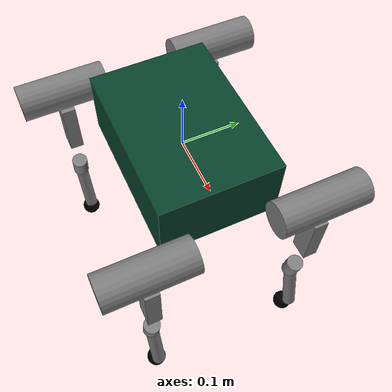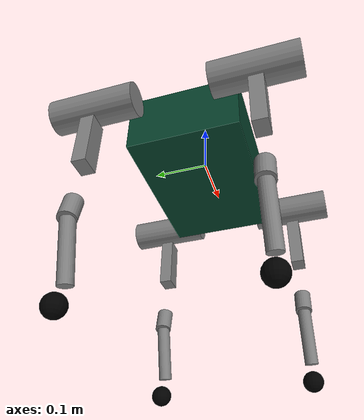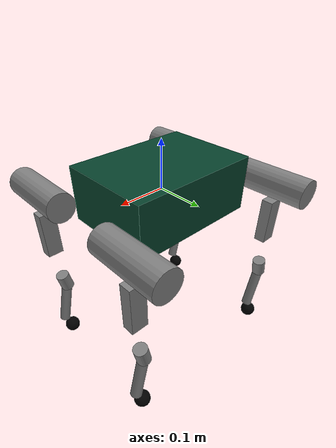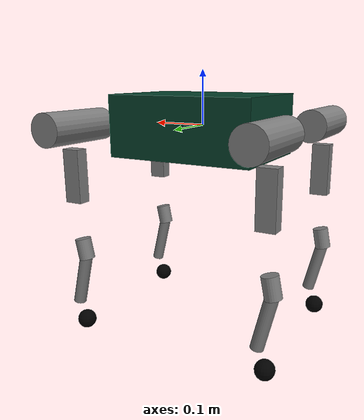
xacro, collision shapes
<?xml version="1.0" encoding="utf-8"?>
<robot name="m2_metal" xmlns:xacro="http://www.ros.org/wiki/xacro">

  <xacro:arg name="robot_controllers" default="$(find m2_sim)/config/ros_control/ros_control.yaml"/>
  <xacro:arg name="command_interface" default="effort"/>

  <!-- Materials -->
  <material name="svan_black">
    <color rgba="0.0 0.0 0.0 1.0"/>
  </material>
  <material name="svan_blue">
    <color rgba="0.156 0.55 0.96 1.0"/>
  </material>
  <material name="svan_green">
    <color rgba="0.024 0.251 0.169 1.0"/>
  </material>
  <material name="svan_grey">
    <color rgba="0.5 0.5 0.5 1.0"/>
  </material>

  <!-- Root base_link (REP-120 standard) -->
  <link name="base_link"/>
  <joint name="base_link_joint" type="fixed">
    <parent link="base_link"/>
    <child link="base"/>
    <origin xyz="0 0 0" rpy="0 0 0"/>
  </joint>

  <!-- Base link -->
  <link name="base">
    <inertial>
      <origin xyz="0.058346 -0.002972 0.001919" rpy="0 0 0"/>
      <mass value="5.18596663"/>
      <inertia ixx="0.02220107" ixy="-0.00019966" ixz="-0.00048929" iyy="0.05026338" iyz="-1.27e-05" izz="0.06413613"/>
    </inertial>
    <visual>
      <origin xyz="0 0 0" rpy="0 0 0"/>
      <geometry>
        <mesh filename="package://m2_description/meshes/torso.STL"/>
      </geometry>
      <material name="svan_green"/>
    </visual>
    <collision>
      <origin xyz="0 0 0" rpy="0 0 0"/>
      <geometry>
        <box size="0.28 0.20 0.114"/>
      </geometry>
    </collision>
  </link>

  <!-- IMU link -->
  <link name="imu_link"/>
  <joint name="base_to_imu" type="fixed">
    <parent link="base"/>
    <child link="imu_link"/>
    <origin xyz="0 0 0" rpy="0 0 0"/>
  </joint>

  <!-- ==================== FRONT LEFT (FL) LEG ==================== -->
  <joint name="FL_hip_joint" type="revolute">
    <parent link="base"/>
    <child link="FL_hip"/>
    <origin xyz="0.147 0.06 0.00025" rpy="0 0 0"/>
    <axis xyz="1 0 0"/>
    <limit lower="-4.8" upper="4.9" effort="12" velocity="30"/>
  </joint>
  <link name="FL_hip">
    <inertial>
      <origin xyz="0.00918208 -0.00133606 -0.00430117" rpy="0 0 0"/>
      <mass value="1.127"/>
      <inertia ixx="0.0026019" ixy="0.0001226" ixz="0" iyy="0.0009202" iyz="0" izz="0.0026365"/>
    </inertial>
    <visual>
      <origin xyz="0 0 0" rpy="0 0 0"/>
      <geometry>
        <mesh filename="package://m2_description/meshes/FL_hip.STL"/>
      </geometry>
      <material name="svan_grey"/>
    </visual>
    <collision>
      <origin xyz="0.04 0.08 0.0" rpy="1.57 0 0"/>
      <geometry>
        <cylinder length="0.15" radius="0.03"/>
      </geometry>
    </collision>
  </link>

  <joint name="FL_thigh_joint" type="revolute">
    <parent link="FL_hip"/>
    <child link="FL_thigh"/>
    <origin xyz="0.043751 0.0811 0.0" rpy="0 0 0"/>
    <axis xyz="0 1 0"/>
    <limit lower="-4.04" upper="4.188" effort="12" velocity="30"/>
  </joint>
  <link name="FL_thigh">
    <inertial>
      <origin xyz="0.0 0.00262472 -0.06933846" rpy="0 0 0"/>
      <mass value="0.15396568"/>
      <inertia ixx="0.00075104" ixy="0.0" ixz="0.0" iyy="0.00076" iyz="2.9e-05" izz="4.7e-05"/>
    </inertial>
    <visual>
      <origin xyz="0 0 0" rpy="0 0 0"/>
      <geometry>
        <mesh filename="package://m2_description/meshes/FL_thigh.STL"/>
      </geometry>
      <material name="svan_grey"/>
    </visual>
    <collision>
      <origin xyz="0.0 0.0 -0.09" rpy="0 0 0"/>
      <geometry>
        <box size="0.034 0.0245 0.10"/>
      </geometry>
    </collision>
  </link>

  <joint name="FL_calf_joint" type="revolute">
    <parent link="FL_thigh"/>
    <child link="FL_calf"/>
    <origin xyz="0.0 0.0 -0.1915" rpy="0 0 0"/>
    <axis xyz="0 1 0"/>
    <limit lower="-4.69" upper="4.91" effort="24" velocity="15"/>
  </joint>
  <link name="FL_calf">
    <inertial>
      <origin xyz="-0.00106 0.0 -0.12046" rpy="0 0 0"/>
      <mass value="0.124482"/>
      <inertia ixx="0.0005021" ixy="0.0" ixz="-1.27e-05" iyy="0.000517" iyz="0" izz="2.02e-05"/>
    </inertial>
    <visual>
      <origin xyz="0 0 0" rpy="0 0 0"/>
      <geometry>
        <mesh filename="package://m2_description/meshes/FL_calf.STL"/>
      </geometry>
      <material name="svan_grey"/>
    </visual>
    <collision>
      <origin xyz="-0.01 0.0 -0.04" rpy="0 0.2 0"/>
      <geometry>
        <cylinder length="0.04" radius="0.015"/>
      </geometry>
    </collision>
    <collision>
      <origin xyz="-0.0 0.0 -0.105" rpy="0 -0.24 0"/>
      <geometry>
        <cylinder length="0.1" radius="0.012"/>
      </geometry>
    </collision>
  </link>

  <joint name="FL_foot_joint" type="fixed" dont_collapse="true">
    <parent link="FL_calf"/>
    <child link="FL_foot"/>
    <origin xyz="-0.00351 0.0 -0.1901" rpy="0 0 0"/>
    <axis xyz="0 0 0"/>
    <limit lower="0" upper="0" effort="1000" velocity="0"/>
  </joint>
  <link name="FL_foot">
    <inertial>
      <origin xyz="-0.0025566 0.00017773 -0.00416818" rpy="0 0 0"/>
      <mass value="0.02330447"/>
      <inertia ixx="2.62e-06" ixy="0" ixz="3.7e-07" iyy="2.62e-06" iyz="0" izz="3e-06"/>
    </inertial>
    <visual>
      <origin xyz="0 0 0" rpy="0 0 0"/>
      <geometry>
        <mesh filename="package://m2_description/meshes/FL_foot.STL"/>
      </geometry>
      <material name="svan_black"/>
    </visual>
    <collision name="FL_foot_collision">
      <origin xyz="0.0 0.0 0.0" rpy="0 0 0"/>
      <geometry>
        <sphere radius="0.018"/>
      </geometry>
    </collision>
  </link>

  <link name="FL_foot_site"/>
  <joint name="FL_foot_site_joint" type="fixed" dont_collapse="true">
    <origin rpy="0 0 0" xyz="-0.0 0 -0.016"/>
    <parent link="FL_foot"/>
    <child link="FL_foot_site"/>
    <axis xyz="0 0 1"/>
    <limit effort="1000" lower="0" upper="0" velocity="0"/>
  </joint>

  <!-- ==================== FRONT RIGHT (FR) LEG ==================== -->
  <joint name="FR_hip_joint" type="revolute">
    <parent link="base"/>
    <child link="FR_hip"/>
    <origin xyz="0.147 -0.06 0.00025" rpy="0 0 0"/>
    <axis xyz="1 0 0"/>
    <limit lower="-4.8" upper="4.9" effort="12" velocity="30"/>
  </joint>
  <link name="FR_hip">
    <inertial>
      <origin xyz="0.00918208 -0.00133606 -0.00430117" rpy="0 0 0"/>
      <mass value="1.127"/>
      <inertia ixx="0.0026019" ixy="0.0001226" ixz="0" iyy="0.0009202" iyz="0" izz="0.0026365"/>
    </inertial>
    <visual>
      <origin xyz="0 0 0" rpy="0 0 0"/>
      <geometry>
        <mesh filename="package://m2_description/meshes/FR_hip.STL"/>
      </geometry>
      <material name="svan_grey"/>
    </visual>
    <collision>
      <origin xyz="0.04 -0.08 0.0" rpy="1.57 0 0"/>
      <geometry>
        <cylinder length="0.15" radius="0.03"/>
      </geometry>
    </collision>
  </link>

  <joint name="FR_thigh_joint" type="revolute">
    <parent link="FR_hip"/>
    <child link="FR_thigh"/>
    <origin xyz="0.043751 -0.0811 0.0" rpy="0 0 0"/>
    <axis xyz="0 1 0"/>
    <limit lower="-4.04" upper="4.188" effort="12" velocity="30"/>
  </joint>
  <link name="FR_thigh">
    <inertial>
      <origin xyz="0.0 0.00262472 -0.06933846" rpy="0 0 0"/>
      <mass value="0.15396568"/>
      <inertia ixx="0.00075104" ixy="0.0" ixz="0.0" iyy="0.00076" iyz="2.9e-05" izz="4.7e-05"/>
    </inertial>
    <visual>
      <origin xyz="0 0 0" rpy="0 0 0"/>
      <geometry>
        <mesh filename="package://m2_description/meshes/FR_thigh.STL"/>
      </geometry>
      <material name="svan_grey"/>
    </visual>
    <collision>
      <origin xyz="0.0 -0.0 -0.09" rpy="0 0 0"/>
      <geometry>
        <box size="0.034 0.0245 0.10"/>
      </geometry>
    </collision>
  </link>

  <joint name="FR_calf_joint" type="revolute">
    <parent link="FR_thigh"/>
    <child link="FR_calf"/>
    <origin xyz="0.0 -0.0 -0.1915" rpy="0 0 0"/>
    <axis xyz="0 1 0"/>
    <limit lower="-4.69" upper="4.91" effort="24" velocity="15"/>
  </joint>
  <link name="FR_calf">
    <inertial>
      <origin xyz="-0.00106 -0.0 -0.12046" rpy="0 0 0"/>
      <mass value="0.124482"/>
      <inertia ixx="0.0005021" ixy="0.0" ixz="-1.27e-05" iyy="0.000517" iyz="0" izz="2.02e-05"/>
    </inertial>
    <visual>
      <origin xyz="0 0 0" rpy="0 0 0"/>
      <geometry>
        <mesh filename="package://m2_description/meshes/FR_calf.STL"/>
      </geometry>
      <material name="svan_grey"/>
    </visual>
    <collision>
      <origin xyz="-0.01 -0.0 -0.04" rpy="0 0.2 0"/>
      <geometry>
        <cylinder length="0.04" radius="0.015"/>
      </geometry>
    </collision>
    <collision>
      <origin xyz="-0.0 -0.0 -0.105" rpy="0 -0.24 0"/>
      <geometry>
        <cylinder length="0.1" radius="0.012"/>
      </geometry>
    </collision>
  </link>

  <joint name="FR_foot_joint" type="fixed" dont_collapse="true">
    <parent link="FR_calf"/>
    <child link="FR_foot"/>
    <origin xyz="-0.00351 -0.0 -0.1901" rpy="0 0 0"/>
    <axis xyz="0 0 0"/>
    <limit lower="0" upper="0" effort="1000" velocity="0"/>
  </joint>
  <link name="FR_foot">
    <inertial>
      <origin xyz="-0.0025566 0.00017773 -0.00416818" rpy="0 0 0"/>
      <mass value="0.02330447"/>
      <inertia ixx="2.62e-06" ixy="0" ixz="3.7e-07" iyy="2.62e-06" iyz="0" izz="3e-06"/>
    </inertial>
    <visual>
      <origin xyz="0 0 0" rpy="0 0 0"/>
      <geometry>
        <mesh filename="package://m2_description/meshes/FR_foot.STL"/>
      </geometry>
      <material name="svan_black"/>
    </visual>
    <collision name="FR_foot_collision">
      <origin xyz="0.0 0.0 0.0" rpy="0 0 0"/>
      <geometry>
        <sphere radius="0.018"/>
      </geometry>
    </collision>
  </link>

  <link name="FR_foot_site"/>
  <joint name="FR_foot_site_joint" type="fixed" dont_collapse="true">
    <origin rpy="0 0 0" xyz="-0.0 0 -0.016"/>
    <parent link="FR_foot"/>
    <child link="FR_foot_site"/>
    <axis xyz="0 0 1"/>
    <limit effort="1000" lower="0" upper="0" velocity="0"/>
  </joint>

  <!-- ==================== REAR LEFT (RL) LEG ==================== -->
  <joint name="RL_hip_joint" type="revolute">
    <parent link="base"/>
    <child link="RL_hip"/>
    <origin xyz="-0.147 0.06 0.00025" rpy="0 0 0"/>
    <axis xyz="1 0 0"/>
    <limit lower="-4.8" upper="4.9" effort="12" velocity="30"/>
  </joint>
  <link name="RL_hip">
    <inertial>
      <origin xyz="0.00918208 -0.00133606 -0.00430117" rpy="0 0 0"/>
      <mass value="1.127"/>
      <inertia ixx="0.0026019" ixy="0.0001226" ixz="0" iyy="0.0009202" iyz="0" izz="0.0026365"/>
    </inertial>
    <visual>
      <origin xyz="0 0 0" rpy="0 0 0"/>
      <geometry>
        <mesh filename="package://m2_description/meshes/RL_hip.STL"/>
      </geometry>
      <material name="svan_grey"/>
    </visual>
    <collision>
      <origin xyz="-0.04 0.08 0.0" rpy="1.57 0 0"/>
      <geometry>
        <cylinder length="0.15" radius="0.03"/>
      </geometry>
    </collision>
  </link>

  <joint name="RL_thigh_joint" type="revolute">
    <parent link="RL_hip"/>
    <child link="RL_thigh"/>
    <origin xyz="-0.043751 0.0811 0.0" rpy="0 0 0"/>
    <axis xyz="0 1 0"/>
    <limit lower="-4.04" upper="4.188" effort="12" velocity="30"/>
  </joint>
  <link name="RL_thigh">
    <inertial>
      <origin xyz="0.0 0.00262472 -0.06933846" rpy="0 0 0"/>
      <mass value="0.15396568"/>
      <inertia ixx="0.00075104" ixy="0.0" ixz="0.0" iyy="0.00076" iyz="2.9e-05" izz="4.7e-05"/>
    </inertial>
    <visual>
      <origin xyz="0 0 0" rpy="0 0 0"/>
      <geometry>
        <mesh filename="package://m2_description/meshes/RL_thigh.STL"/>
      </geometry>
      <material name="svan_grey"/>
    </visual>
    <collision>
      <origin xyz="-0.0 0.0 -0.09" rpy="0 0 0"/>
      <geometry>
        <box size="0.034 0.0245 0.10"/>
      </geometry>
    </collision>
  </link>

  <joint name="RL_calf_joint" type="revolute">
    <parent link="RL_thigh"/>
    <child link="RL_calf"/>
    <origin xyz="-0.0 0.0 -0.1915" rpy="0 0 0"/>
    <axis xyz="0 1 0"/>
    <limit lower="-4.69" upper="4.91" effort="24" velocity="15"/>
  </joint>
  <link name="RL_calf">
    <inertial>
      <origin xyz="-0.00106 0.0 -0.1083" rpy="0 0 0"/>
      <mass value="0.124482"/>
      <inertia ixx="0.0005021" ixy="0.0" ixz="-1.27e-05" iyy="0.000517" iyz="0" izz="2.02e-05"/>
    </inertial>
    <visual>
      <origin xyz="0 0 0" rpy="0 0 0"/>
      <geometry>
        <mesh filename="package://m2_description/meshes/RL_calf.STL"/>
      </geometry>
      <material name="svan_grey"/>
    </visual>
    <collision>
      <origin xyz="-0.01 0.0 -0.04" rpy="0 0.2 0"/>
      <geometry>
        <cylinder length="0.04" radius="0.015"/>
      </geometry>
    </collision>
    <collision>
      <origin xyz="-0.0 0.0 -0.105" rpy="0 -0.24 0"/>
      <geometry>
        <cylinder length="0.1" radius="0.012"/>
      </geometry>
    </collision>
  </link>

  <joint name="RL_foot_joint" type="fixed" dont_collapse="true">
    <parent link="RL_calf"/>
    <child link="RL_foot"/>
    <origin xyz="-0.00351 0.0 -0.1901" rpy="0 0 0"/>
    <axis xyz="0 0 0"/>
    <limit lower="0" upper="0" effort="1000" velocity="0"/>
  </joint>
  <link name="RL_foot">
    <inertial>
      <origin xyz="-0.0025566 0.00017773 -0.00416818" rpy="0 0 0"/>
      <mass value="0.02330447"/>
      <inertia ixx="2.62e-06" ixy="0" ixz="3.7e-07" iyy="2.62e-06" iyz="0" izz="3e-06"/>
    </inertial>
    <visual>
      <origin xyz="0 0 0" rpy="0 0 0"/>
      <geometry>
        <mesh filename="package://m2_description/meshes/RL_foot.STL"/>
      </geometry>
      <material name="svan_black"/>
    </visual>
    <collision name="RL_foot_collision">
      <origin xyz="0.0 0.0 0.0" rpy="0 0 0"/>
      <geometry>
        <sphere radius="0.018"/>
      </geometry>
    </collision>
  </link>

  <link name="RL_foot_site"/>
  <joint name="RL_foot_site_joint" type="fixed" dont_collapse="true">
    <origin rpy="0 0 0" xyz="-0.0 0 -0.016"/>
    <parent link="RL_foot"/>
    <child link="RL_foot_site"/>
    <axis xyz="0 0 1"/>
    <limit effort="1000" lower="0" upper="0" velocity="0"/>
  </joint>

  <!-- ==================== REAR RIGHT (RR) LEG ==================== -->
  <joint name="RR_hip_joint" type="revolute">
    <parent link="base"/>
    <child link="RR_hip"/>
    <origin xyz="-0.147 -0.06 0.00025" rpy="0 0 0"/>
    <axis xyz="1 0 0"/>
    <limit lower="-4.8" upper="4.9" effort="12" velocity="30"/>
  </joint>
  <link name="RR_hip">
    <inertial>
      <origin xyz="0.00918208 -0.00133606 -0.00430117" rpy="0 0 0"/>
      <mass value="1.127"/>
      <inertia ixx="0.0026019" ixy="0.0001226" ixz="0" iyy="0.0009202" iyz="0" izz="0.0026365"/>
    </inertial>
    <visual>
      <origin xyz="0 0 0" rpy="0 0 0"/>
      <geometry>
        <mesh filename="package://m2_description/meshes/RR_hip.STL"/>
      </geometry>
      <material name="svan_grey"/>
    </visual>
    <collision>
      <origin xyz="-0.04 -0.08 0.0" rpy="1.57 0 0"/>
      <geometry>
        <cylinder length="0.15" radius="0.03"/>
      </geometry>
    </collision>
  </link>

  <joint name="RR_thigh_joint" type="revolute">
    <parent link="RR_hip"/>
    <child link="RR_thigh"/>
    <origin xyz="-0.043751 -0.0811 0.0" rpy="0 0 0"/>
    <axis xyz="0 1 0"/>
    <limit lower="-4.04" upper="4.188" effort="12" velocity="30"/>
  </joint>
  <link name="RR_thigh">
    <inertial>
      <origin xyz="0.0 0.00262472 -0.06933846" rpy="0 0 0"/>
      <mass value="0.15396568"/>
      <inertia ixx="0.00075104" ixy="0.0" ixz="0.0" iyy="0.00076" iyz="2.9e-05" izz="4.7e-05"/>
    </inertial>
    <visual>
      <origin xyz="0 0 0" rpy="0 0 0"/>
      <geometry>
        <mesh filename="package://m2_description/meshes/RR_thigh.STL"/>
      </geometry>
      <material name="svan_grey"/>
    </visual>
    <collision>
      <origin xyz="-0.0 -0.0 -0.09" rpy="0 0 0"/>
      <geometry>
        <box size="0.034 0.0245 0.10"/>
      </geometry>
    </collision>
  </link>

  <joint name="RR_calf_joint" type="revolute">
    <parent link="RR_thigh"/>
    <child link="RR_calf"/>
    <origin xyz="-0.0 -0.0 -0.1915" rpy="0 0 0"/>
    <axis xyz="0 1 0"/>
    <limit lower="-4.69" upper="4.91" effort="24" velocity="15"/>
  </joint>
  <link name="RR_calf">
    <inertial>
      <origin xyz="-0.00106 -0.0 -0.1083" rpy="0 0 0"/>
      <mass value="0.124482"/>
      <inertia ixx="0.0005021" ixy="0.0" ixz="-1.27e-05" iyy="0.000517" iyz="0" izz="2.02e-05"/>
    </inertial>
    <visual>
      <origin xyz="0 0 0" rpy="0 0 0"/>
      <geometry>
        <mesh filename="package://m2_description/meshes/RR_calf.STL"/>
      </geometry>
      <material name="svan_grey"/>
    </visual>
    <collision>
      <origin xyz="-0.01 -0.0 -0.04" rpy="0 0.2 0"/>
      <geometry>
        <cylinder length="0.04" radius="0.015"/>
      </geometry>
    </collision>
    <collision>
      <origin xyz="-0.0 -0.0 -0.105" rpy="0 -0.24 0"/>
      <geometry>
        <cylinder length="0.1" radius="0.012"/>
      </geometry>
    </collision>
  </link>

  <joint name="RR_foot_joint" type="fixed" dont_collapse="true">
    <parent link="RR_calf"/>
    <child link="RR_foot"/>
    <origin xyz="-0.00351 -0.0 -0.1901" rpy="0 0 0"/>
    <axis xyz="0 0 0"/>
    <limit lower="0" upper="0" effort="1000" velocity="0"/>
  </joint>
  <link name="RR_foot">
    <inertial>
      <origin xyz="-0.0025566 0.00017773 -0.00416818" rpy="0 0 0"/>
      <mass value="0.02330447"/>
      <inertia ixx="2.62e-06" ixy="0" ixz="3.7e-07" iyy="2.62e-06" iyz="0" izz="3e-06"/>
    </inertial>
    <visual>
      <origin xyz="0 0 0" rpy="0 0 0"/>
      <geometry>
        <mesh filename="package://m2_description/meshes/RR_foot.STL"/>
      </geometry>
      <material name="svan_black"/>
    </visual>
    <collision name="RR_foot_collision">
      <origin xyz="0.0 0.0 0.0" rpy="0 0 0"/>
      <geometry>
        <sphere radius="0.018"/>
      </geometry>
    </collision>
  </link>

  <link name="RR_foot_site"/>
  <joint name="RR_foot_site_joint" type="fixed" dont_collapse="true">
    <origin rpy="0 0 0" xyz="-0.0 0 -0.016"/>
    <parent link="RR_foot"/>
    <child link="RR_foot_site"/>
    <axis xyz="0 0 1"/>
    <limit effort="1000" lower="0" upper="0" velocity="0"/>
  </joint>

  <!-- ==================== GAZEBO SIM PLUGINS ==================== -->
  <!-- ROS 2 Control Plugin -->
  <gazebo>
    <plugin filename="gz_ros2_control-system" name="gz_ros2_control::GazeboSimROS2ControlPlugin">
      <parameters>$(arg robot_controllers)</parameters>
      <robot_param_node>robot_state_publisher</robot_param_node>
    </plugin>
  </gazebo>

  <!-- Ground-truth Odometry Plugin -->
  <gazebo>
    <plugin filename="gz-sim-odometry-publisher-system"
      name="gz::sim::systems::OdometryPublisher">
      <odom_frame>odom</odom_frame>
      <dimensions>3</dimensions>
      <robot_base_frame>base_link</robot_base_frame>
      <odom_topic>/odom/ground_truth</odom_topic>
      <odom_publish_frequency>50</odom_publish_frequency>
    </plugin>
  </gazebo>

  <!-- IMU Plugin on imu_link -->
  <gazebo reference="imu_link">
    <sensor name="imu_sensor" type="imu">
      <always_on>true</always_on>
      <update_rate>100</update_rate>
      <visualize>false</visualize>
      <topic>imu/data</topic>
      <gz_frame_id>imu_link</gz_frame_id>
      <imu>
        <angular_velocity>
          <x><noise type="gaussian"><mean>0.0</mean><stddev>2e-4</stddev></noise></x>
          <y><noise type="gaussian"><mean>0.0</mean><stddev>2e-4</stddev></noise></y>
          <z><noise type="gaussian"><mean>0.0</mean><stddev>2e-4</stddev></noise></z>
        </angular_velocity>
        <linear_acceleration>
          <x><noise type="gaussian"><mean>0.0</mean><stddev>1.7e-2</stddev></noise></x>
          <y><noise type="gaussian"><mean>0.0</mean><stddev>1.7e-2</stddev></noise></y>
          <z><noise type="gaussian"><mean>0.0</mean><stddev>1.7e-2</stddev></noise></z>
        </linear_acceleration>
      </imu>
      <plugin filename="gz-sim-imu-system" name="gz::sim::systems::Imu">
        <initial_orientation_as_reference>false</initial_orientation_as_reference>
      </plugin>
    </sensor>
  </gazebo>

  <!-- Base link physics -->
  <gazebo reference="base">
    <mu1>0.2</mu1>
    <mu2>0.2</mu2>
    <kp>10000.0</kp>
    <kd>1.0</kd>
  </gazebo>

  <!-- Feet Contact Sensors and Joint Preservation -->
  <!-- FL Foot -->
  <gazebo reference="FL_foot">
    <mu1>1.5</mu1>
    <mu2>1.5</mu2>
    <kp>10000.0</kp>
    <kd>1.0</kd>
    <sensor name="lf_foot_contact_sensor" type="contact">
      <always_on>true</always_on>
      <update_rate>100.0</update_rate>
      <contact>
        <collision>FL_foot_collision</collision>
        <topic>/lf_foot_contacts</topic>
      </contact>
    </sensor>
  </gazebo>
  <gazebo reference="FL_foot_joint">
    <preserveFixedJoint>true</preserveFixedJoint>
  </gazebo>

  <!-- FR Foot -->
  <gazebo reference="FR_foot">
    <mu1>1.5</mu1>
    <mu2>1.5</mu2>
    <kp>10000.0</kp>
    <kd>1.0</kd>
    <sensor name="rf_foot_contact_sensor" type="contact">
      <always_on>true</always_on>
      <update_rate>100.0</update_rate>
      <contact>
        <collision>FR_foot_collision</collision>
        <topic>/rf_foot_contacts</topic>
      </contact>
    </sensor>
  </gazebo>
  <gazebo reference="FR_foot_joint">
    <preserveFixedJoint>true</preserveFixedJoint>
  </gazebo>

  <!-- RL Foot -->
  <gazebo reference="RL_foot">
    <mu1>1.5</mu1>
    <mu2>1.5</mu2>
    <kp>10000.0</kp>
    <kd>1.0</kd>
    <sensor name="lh_foot_contact_sensor" type="contact">
      <always_on>true</always_on>
      <update_rate>100.0</update_rate>
      <contact>
        <collision>RL_foot_collision</collision>
        <topic>/lh_foot_contacts</topic>
      </contact>
    </sensor>
  </gazebo>
  <gazebo reference="RL_foot_joint">
    <preserveFixedJoint>true</preserveFixedJoint>
  </gazebo>

  <!-- RR Foot -->
  <gazebo reference="RR_foot">
    <mu1>1.5</mu1>
    <mu2>1.5</mu2>
    <kp>10000.0</kp>
    <kd>1.0</kd>
    <sensor name="rh_foot_contact_sensor" type="contact">
      <always_on>true</always_on>
      <update_rate>100.0</update_rate>
      <contact>
        <collision>RR_foot_collision</collision>
        <topic>/rh_foot_contacts</topic>
      </contact>
    </sensor>
  </gazebo>
  <gazebo reference="RR_foot_joint">
    <preserveFixedJoint>true</preserveFixedJoint>
  </gazebo>

  <!-- ==================== ROS 2 CONTROL HARDWARE INTERFACE ==================== -->
  <ros2_control name="m2_control" type="system">
    <hardware>
      <plugin>gz_ros2_control/GazeboSimSystem</plugin>
    </hardware>

    <!-- FL Leg Joints -->
    <joint name="FL_hip_joint">
      <command_interface name="$(arg command_interface)"/>
      <state_interface name="position"/>
      <state_interface name="velocity"/>
    </joint>
    <joint name="FL_thigh_joint">
      <command_interface name="$(arg command_interface)"/>
      <state_interface name="position"/>
      <state_interface name="velocity"/>
    </joint>
    <joint name="FL_calf_joint">
      <command_interface name="$(arg command_interface)"/>
      <state_interface name="position"/>
      <state_interface name="velocity"/>
    </joint>

    <!-- FR Leg Joints -->
    <joint name="FR_hip_joint">
      <command_interface name="$(arg command_interface)"/>
      <state_interface name="position"/>
      <state_interface name="velocity"/>
    </joint>
    <joint name="FR_thigh_joint">
      <command_interface name="$(arg command_interface)"/>
      <state_interface name="position"/>
      <state_interface name="velocity"/>
    </joint>
    <joint name="FR_calf_joint">
      <command_interface name="$(arg command_interface)"/>
      <state_interface name="position"/>
      <state_interface name="velocity"/>
    </joint>

    <!-- RL Leg Joints -->
    <joint name="RL_hip_joint">
      <command_interface name="$(arg command_interface)"/>
      <state_interface name="position"/>
      <state_interface name="velocity"/>
    </joint>
    <joint name="RL_thigh_joint">
      <command_interface name="$(arg command_interface)"/>
      <state_interface name="position"/>
      <state_interface name="velocity"/>
    </joint>
    <joint name="RL_calf_joint">
      <command_interface name="$(arg command_interface)"/>
      <state_interface name="position"/>
      <state_interface name="velocity"/>
    </joint>

    <!-- RR Leg Joints -->
    <joint name="RR_hip_joint">
      <command_interface name="$(arg command_interface)"/>
      <state_interface name="position"/>
      <state_interface name="velocity"/>
    </joint>
    <joint name="RR_thigh_joint">
      <command_interface name="$(arg command_interface)"/>
      <state_interface name="position"/>
      <state_interface name="velocity"/>
    </joint>
    <joint name="RR_calf_joint">
      <command_interface name="$(arg command_interface)"/>
      <state_interface name="position"/>
      <state_interface name="velocity"/>
    </joint>
  </ros2_control>

</robot>
